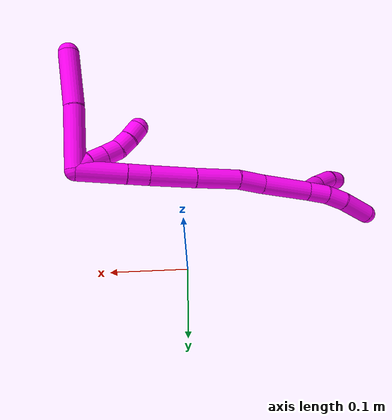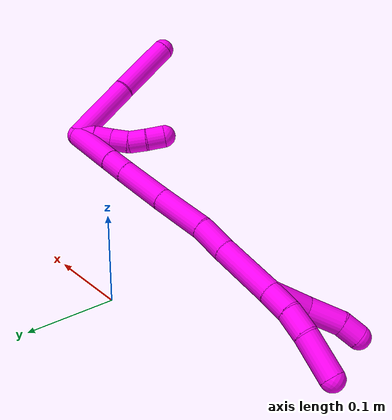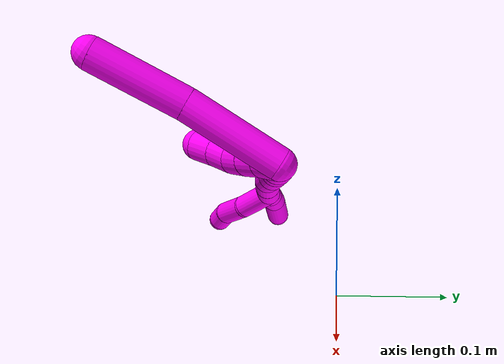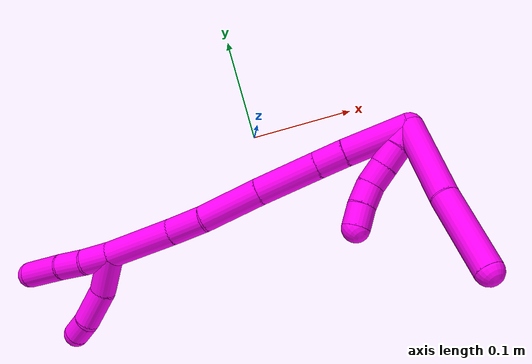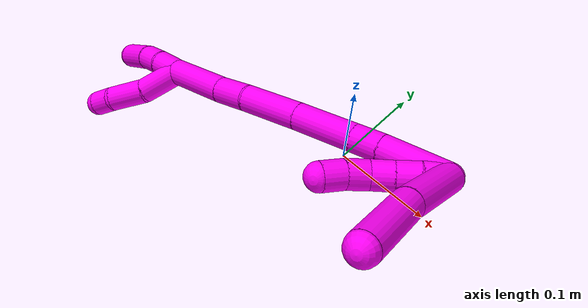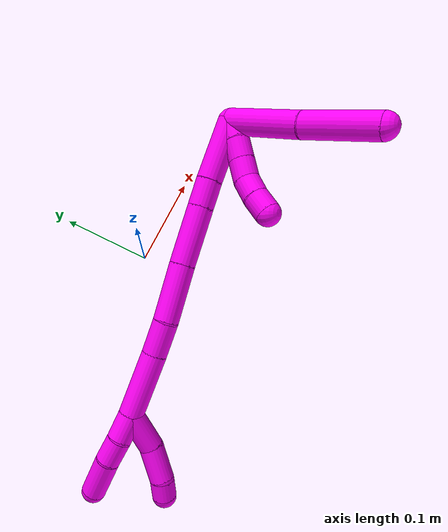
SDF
<sdf version="1.7">
 <world name="default">
  <model name="10">
   <static>0</static>
   <link name="10">
    <collision name="collision-cylinder-e_1_2_8">
     <pose>-0.005921 -0.000742 0.038357 0.019348 -0.153123 -0.001484</pose>
     <geometry><cylinder><radius>0.0125</radius><length>0.077637</length></cylinder></geometry>
     <surface>
      <friction><ode><mu>1.16</mu><mu2>1.16</mu2><slip1>0</slip1><slip2>0</slip2></ode></friction>
      <contact><ode><kp>1e+06</kp><kd>1</kd><max_vel>0</max_vel><min_depth>0.001</min_depth></ode></contact>
     </surface>
    </collision>
    <visual name="visual-cylinder-e_1_2_8">
     <pose>-0.005921 -0.000742 0.038357 0.019348 -0.153123 -0.001484</pose>
     <geometry><cylinder><radius>0.0125</radius><length>0.077637</length></cylinder></geometry>
     <material><ambient>1 0 0.964706 1</ambient></material>
    </visual>
    <collision name="collision-cylinder-e_2_8_6">
     <pose>-0.01533 -0.005603 0.112491 0.11461 -0.096561 -0.005544</pose>
     <geometry><cylinder><radius>0.0125</radius><length>0.072363</length></cylinder></geometry>
     <surface>
      <friction><ode><mu>1.16</mu><mu2>1.16</mu2><slip1>0</slip1><slip2>0</slip2></ode></friction>
      <contact><ode><kp>1e+06</kp><kd>1</kd><max_vel>0</max_vel><min_depth>0.001</min_depth></ode></contact>
     </surface>
    </collision>
    <visual name="visual-cylinder-e_2_8_6">
     <pose>-0.01533 -0.005603 0.112491 0.11461 -0.096561 -0.005544</pose>
     <geometry><cylinder><radius>0.0125</radius><length>0.072363</length></cylinder></geometry>
     <material><ambient>1 0 0.964706 1</ambient></material>
    </visual>
    <collision name="collision-cylinder-e_1_2_9">
     <pose>-0.009151 -0.00086 0.003939 0.214971 -1.15586 -0.140517</pose>
     <geometry><cylinder><radius>0.0125</radius><length>0.02</length></cylinder></geometry>
     <surface>
      <friction><ode><mu>1.16</mu><mu2>1.16</mu2><slip1>0</slip1><slip2>0</slip2></ode></friction>
      <contact><ode><kp>1e+06</kp><kd>1</kd><max_vel>0</max_vel><min_depth>0.001</min_depth></ode></contact>
     </surface>
    </collision>
    <visual name="visual-cylinder-e_1_2_9">
     <pose>-0.009151 -0.00086 0.003939 0.214971 -1.15586 -0.140517</pose>
     <geometry><cylinder><radius>0.0125</radius><length>0.02</length></cylinder></geometry>
     <material><ambient>1 0 0.964706 1</ambient></material>
    </visual>
    <collision name="collision-cylinder-e_2_9_10">
     <pose>-0.027709 -0.00296 0.011037 0.37406 -1.22445 -0.264236</pose>
     <geometry><cylinder><radius>0.0125</radius><length>0.02</length></cylinder></geometry>
     <surface>
      <friction><ode><mu>1.16</mu><mu2>1.16</mu2><slip1>0</slip1><slip2>0</slip2></ode></friction>
      <contact><ode><kp>1e+06</kp><kd>1</kd><max_vel>0</max_vel><min_depth>0.001</min_depth></ode></contact>
     </surface>
    </collision>
    <visual name="visual-cylinder-e_2_9_10">
     <pose>-0.027709 -0.00296 0.011037 0.37406 -1.22445 -0.264236</pose>
     <geometry><cylinder><radius>0.0125</radius><length>0.02</length></cylinder></geometry>
     <material><ambient>1 0 0.964706 1</ambient></material>
    </visual>
    <collision name="collision-cylinder-e_3_10_11">
     <pose>-0.046497 -0.005068 0.017548 0.25324 -1.21736 -0.176983</pose>
     <geometry><cylinder><radius>0.0125</radius><length>0.02</length></cylinder></geometry>
     <surface>
      <friction><ode><mu>1.16</mu><mu2>1.16</mu2><slip1>0</slip1><slip2>0</slip2></ode></friction>
      <contact><ode><kp>1e+06</kp><kd>1</kd><max_vel>0</max_vel><min_depth>0.001</min_depth></ode></contact>
     </surface>
    </collision>
    <visual name="visual-cylinder-e_3_10_11">
     <pose>-0.046497 -0.005068 0.017548 0.25324 -1.21736 -0.176983</pose>
     <geometry><cylinder><radius>0.0125</radius><length>0.02</length></cylinder></geometry>
     <material><ambient>1 0 0.964706 1</ambient></material>
    </visual>
    <collision name="collision-cylinder-e_4_11_12">
     <pose>-0.06396 -0.006175 0.026784 0.040746 -0.940933 -0.020724</pose>
     <geometry><cylinder><radius>0.0125</radius><length>0.02</length></cylinder></geometry>
     <surface>
      <friction><ode><mu>1.16</mu><mu2>1.16</mu2><slip1>0</slip1><slip2>0</slip2></ode></friction>
      <contact><ode><kp>1e+06</kp><kd>1</kd><max_vel>0</max_vel><min_depth>0.001</min_depth></ode></contact>
     </surface>
    </collision>
    <visual name="visual-cylinder-e_4_11_12">
     <pose>-0.06396 -0.006175 0.026784 0.040746 -0.940933 -0.020724</pose>
     <geometry><cylinder><radius>0.0125</radius><length>0.02</length></cylinder></geometry>
     <material><ambient>1 0 0.964706 1</ambient></material>
    </visual>
    <collision name="collision-cylinder-e_5_12_5">
     <pose>-0.07938 -0.007468 0.03938 0.155711 -0.82399 -0.068158</pose>
     <geometry><cylinder><radius>0.0125</radius><length>0.02</length></cylinder></geometry>
     <surface>
      <friction><ode><mu>1.16</mu><mu2>1.16</mu2><slip1>0</slip1><slip2>0</slip2></ode></friction>
      <contact><ode><kp>1e+06</kp><kd>1</kd><max_vel>0</max_vel><min_depth>0.001</min_depth></ode></contact>
     </surface>
    </collision>
    <visual name="visual-cylinder-e_5_12_5">
     <pose>-0.07938 -0.007468 0.03938 0.155711 -0.82399 -0.068158</pose>
     <geometry><cylinder><radius>0.0125</radius><length>0.02</length></cylinder></geometry>
     <material><ambient>1 0 0.964706 1</ambient></material>
    </visual>
    <collision name="collision-cylinder-e_1_2_13">
     <pose>-0.028418 0.003645 -0.006593 -2.63663 -1.31166 2.49457</pose>
     <geometry><cylinder><radius>0.0125</radius><length>0.058799</length></cylinder></geometry>
     <surface>
      <friction><ode><mu>1.16</mu><mu2>1.16</mu2><slip1>0</slip1><slip2>0</slip2></ode></friction>
      <contact><ode><kp>1e+06</kp><kd>1</kd><max_vel>0</max_vel><min_depth>0.001</min_depth></ode></contact>
     </surface>
    </collision>
    <visual name="visual-cylinder-e_1_2_13">
     <pose>-0.028418 0.003645 -0.006593 -2.63663 -1.31166 2.49457</pose>
     <geometry><cylinder><radius>0.0125</radius><length>0.058799</length></cylinder></geometry>
     <material><ambient>1 0 0.964706 1</ambient></material>
    </visual>
    <collision name="collision-cylinder-e_2_13_14">
     <pose>-0.069785 0.008376 -0.016006 -2.77372 -1.34153 2.681</pose>
     <geometry><cylinder><radius>0.0125</radius><length>0.026594</length></cylinder></geometry>
     <surface>
      <friction><ode><mu>1.16</mu><mu2>1.16</mu2><slip1>0</slip1><slip2>0</slip2></ode></friction>
      <contact><ode><kp>1e+06</kp><kd>1</kd><max_vel>0</max_vel><min_depth>0.001</min_depth></ode></contact>
     </surface>
    </collision>
    <visual name="visual-cylinder-e_2_13_14">
     <pose>-0.069785 0.008376 -0.016006 -2.77372 -1.34153 2.681</pose>
     <geometry><cylinder><radius>0.0125</radius><length>0.026594</length></cylinder></geometry>
     <material><ambient>1 0 0.964706 1</ambient></material>
    </visual>
    <collision name="collision-cylinder-e_3_14_15">
     <pose>-0.110724 0.011947 -0.024613 -2.73605 -1.3495 2.6385</pose>
     <geometry><cylinder><radius>0.0125</radius><length>0.057379</length></cylinder></geometry>
     <surface>
      <friction><ode><mu>1.16</mu><mu2>1.16</mu2><slip1>0</slip1><slip2>0</slip2></ode></friction>
      <contact><ode><kp>1e+06</kp><kd>1</kd><max_vel>0</max_vel><min_depth>0.001</min_depth></ode></contact>
     </surface>
    </collision>
    <visual name="visual-cylinder-e_3_14_15">
     <pose>-0.110724 0.011947 -0.024613 -2.73605 -1.3495 2.6385</pose>
     <geometry><cylinder><radius>0.0125</radius><length>0.057379</length></cylinder></geometry>
     <material><ambient>1 0 0.964706 1</ambient></material>
    </visual>
    <collision name="collision-cylinder-e_4_15_16">
     <pose>-0.166756 0.016506 -0.035507 -2.75585 -1.37668 2.67536</pose>
     <geometry><cylinder><radius>0.0125</radius><length>0.057156</length></cylinder></geometry>
     <surface>
      <friction><ode><mu>1.16</mu><mu2>1.16</mu2><slip1>0</slip1><slip2>0</slip2></ode></friction>
      <contact><ode><kp>1e+06</kp><kd>1</kd><max_vel>0</max_vel><min_depth>0.001</min_depth></ode></contact>
     </surface>
    </collision>
    <visual name="visual-cylinder-e_4_15_16">
     <pose>-0.166756 0.016506 -0.035507 -2.75585 -1.37668 2.67536</pose>
     <geometry><cylinder><radius>0.0125</radius><length>0.057156</length></cylinder></geometry>
     <material><ambient>1 0 0.964706 1</ambient></material>
    </visual>
    <collision name="collision-cylinder-e_5_16_17">
     <pose>-0.211123 0.018603 -0.045925 -3.13726 -1.25631 3.13563</pose>
     <geometry><cylinder><radius>0.0125</radius><length>0.034337</length></cylinder></geometry>
     <surface>
      <friction><ode><mu>1.16</mu><mu2>1.16</mu2><slip1>0</slip1><slip2>0</slip2></ode></friction>
      <contact><ode><kp>1e+06</kp><kd>1</kd><max_vel>0</max_vel><min_depth>0.001</min_depth></ode></contact>
     </surface>
    </collision>
    <visual name="visual-cylinder-e_5_16_17">
     <pose>-0.211123 0.018603 -0.045925 -3.13726 -1.25631 3.13563</pose>
     <geometry><cylinder><radius>0.0125</radius><length>0.034337</length></cylinder></geometry>
     <material><ambient>1 0 0.964706 1</ambient></material>
    </visual>
    <collision name="collision-cylinder-e_6_17_1">
     <pose>-0.258828 0.020961 -0.060732 -2.9005 -1.26867 2.81525</pose>
     <geometry><cylinder><radius>0.0125</radius><length>0.065734</length></cylinder></geometry>
     <surface>
      <friction><ode><mu>1.16</mu><mu2>1.16</mu2><slip1>0</slip1><slip2>0</slip2></ode></friction>
      <contact><ode><kp>1e+06</kp><kd>1</kd><max_vel>0</max_vel><min_depth>0.001</min_depth></ode></contact>
     </surface>
    </collision>
    <visual name="visual-cylinder-e_6_17_1">
     <pose>-0.258828 0.020961 -0.060732 -2.9005 -1.26867 2.81525</pose>
     <geometry><cylinder><radius>0.0125</radius><length>0.065734</length></cylinder></geometry>
     <material><ambient>1 0 0.964706 1</ambient></material>
    </visual>
    <collision name="collision-cylinder-e_1_1_18">
     <pose>-0.303205 0.025112 -0.074847 -2.76681 -1.20614 2.60423</pose>
     <geometry><cylinder><radius>0.0125</radius><length>0.027827</length></cylinder></geometry>
     <surface>
      <friction><ode><mu>1.16</mu><mu2>1.16</mu2><slip1>0</slip1><slip2>0</slip2></ode></friction>
      <contact><ode><kp>1e+06</kp><kd>1</kd><max_vel>0</max_vel><min_depth>0.001</min_depth></ode></contact>
     </surface>
    </collision>
    <visual name="visual-cylinder-e_1_1_18">
     <pose>-0.303205 0.025112 -0.074847 -2.76681 -1.20614 2.60423</pose>
     <geometry><cylinder><radius>0.0125</radius><length>0.027827</length></cylinder></geometry>
     <material><ambient>1 0 0.964706 1</ambient></material>
    </visual>
    <collision name="collision-cylinder-e_2_18_19">
     <pose>-0.328179 0.027258 -0.085758 -3.08939 -1.08635 3.05517</pose>
     <geometry><cylinder><radius>0.0125</radius><length>0.027065</length></cylinder></geometry>
     <surface>
      <friction><ode><mu>1.16</mu><mu2>1.16</mu2><slip1>0</slip1><slip2>0</slip2></ode></friction>
      <contact><ode><kp>1e+06</kp><kd>1</kd><max_vel>0</max_vel><min_depth>0.001</min_depth></ode></contact>
     </surface>
    </collision>
    <visual name="visual-cylinder-e_2_18_19">
     <pose>-0.328179 0.027258 -0.085758 -3.08939 -1.08635 3.05517</pose>
     <geometry><cylinder><radius>0.0125</radius><length>0.027065</length></cylinder></geometry>
     <material><ambient>1 0 0.964706 1</ambient></material>
    </visual>
    <collision name="collision-cylinder-e_3_19_4">
     <pose>-0.35928 0.024399 -0.103573 2.87166 -1.01215 -2.66103</pose>
     <geometry><cylinder><radius>0.0125</radius><length>0.045108</length></cylinder></geometry>
     <surface>
      <friction><ode><mu>1.16</mu><mu2>1.16</mu2><slip1>0</slip1><slip2>0</slip2></ode></friction>
      <contact><ode><kp>1e+06</kp><kd>1</kd><max_vel>0</max_vel><min_depth>0.001</min_depth></ode></contact>
     </surface>
    </collision>
    <visual name="visual-cylinder-e_3_19_4">
     <pose>-0.35928 0.024399 -0.103573 2.87166 -1.01215 -2.66103</pose>
     <geometry><cylinder><radius>0.0125</radius><length>0.045108</length></cylinder></geometry>
     <material><ambient>1 0 0.964706 1</ambient></material>
    </visual>
    <collision name="collision-cylinder-e_1_1_20">
     <pose>-0.306251 0.011141 -0.065738 1.21685 -0.891411 -0.642548</pose>
     <geometry><cylinder><radius>0.0125</radius><length>0.041248</length></cylinder></geometry>
     <surface>
      <friction><ode><mu>1.16</mu><mu2>1.16</mu2><slip1>0</slip1><slip2>0</slip2></ode></friction>
      <contact><ode><kp>1e+06</kp><kd>1</kd><max_vel>0</max_vel><min_depth>0.001</min_depth></ode></contact>
     </surface>
    </collision>
    <visual name="visual-cylinder-e_1_1_20">
     <pose>-0.306251 0.011141 -0.065738 1.21685 -0.891411 -0.642548</pose>
     <geometry><cylinder><radius>0.0125</radius><length>0.041248</length></cylinder></geometry>
     <material><ambient>1 0 0.964706 1</ambient></material>
    </visual>
    <collision name="collision-cylinder-e_2_20_21">
     <pose>-0.339341 -0.008014 -0.057932 1.12855 -1.1443 -0.774093</pose>
     <geometry><cylinder><radius>0.0125</radius><length>0.037443</length></cylinder></geometry>
     <surface>
      <friction><ode><mu>1.16</mu><mu2>1.16</mu2><slip1>0</slip1><slip2>0</slip2></ode></friction>
      <contact><ode><kp>1e+06</kp><kd>1</kd><max_vel>0</max_vel><min_depth>0.001</min_depth></ode></contact>
     </surface>
    </collision>
    <visual name="visual-cylinder-e_2_20_21">
     <pose>-0.339341 -0.008014 -0.057932 1.12855 -1.1443 -0.774093</pose>
     <geometry><cylinder><radius>0.0125</radius><length>0.037443</length></cylinder></geometry>
     <material><ambient>1 0 0.964706 1</ambient></material>
    </visual>
    <collision name="collision-cylinder-e_3_21_3">
     <pose>-0.366048 -0.019398 -0.055577 1.78622 -1.13593 -1.34071</pose>
     <geometry><cylinder><radius>0.0125</radius><length>0.021309</length></cylinder></geometry>
     <surface>
      <friction><ode><mu>1.16</mu><mu2>1.16</mu2><slip1>0</slip1><slip2>0</slip2></ode></friction>
      <contact><ode><kp>1e+06</kp><kd>1</kd><max_vel>0</max_vel><min_depth>0.001</min_depth></ode></contact>
     </surface>
    </collision>
    <visual name="visual-cylinder-e_3_21_3">
     <pose>-0.366048 -0.019398 -0.055577 1.78622 -1.13593 -1.34071</pose>
     <geometry><cylinder><radius>0.0125</radius><length>0.021309</length></cylinder></geometry>
     <material><ambient>1 0 0.964706 1</ambient></material>
    </visual>
    <collision name="collision-sphere-3">
     <pose>-0.375711 -0.023783 -0.056536 0 -0 0</pose>
     <geometry><sphere><radius>0.0125</radius></sphere></geometry>
     <surface>
      <friction><ode><mu>1.16</mu><mu2>1.16</mu2><slip1>0</slip1><slip2>0</slip2></ode></friction>
      <contact><ode><kp>1e+06</kp><kd>1</kd><max_vel>0</max_vel><min_depth>0.001</min_depth></ode></contact>
     </surface>
    </collision>
    <visual name="visual-sphere-3">
     <pose>-0.375711 -0.023783 -0.056536 0 -0 0</pose>
     <geometry><sphere><radius>0.0125</radius></sphere></geometry>
     <material><ambient>1 0 0.964706 1</ambient></material>
    </visual>
    <collision name="collision-sphere-21">
     <pose>-0.356385 -0.015014 -0.054617 0 -0 0</pose>
     <geometry><sphere><radius>0.0125</radius></sphere></geometry>
     <surface>
      <friction><ode><mu>1.16</mu><mu2>1.16</mu2><slip1>0</slip1><slip2>0</slip2></ode></friction>
      <contact><ode><kp>1e+06</kp><kd>1</kd><max_vel>0</max_vel><min_depth>0.001</min_depth></ode></contact>
     </surface>
    </collision>
    <visual name="visual-sphere-21">
     <pose>-0.356385 -0.015014 -0.054617 0 -0 0</pose>
     <geometry><sphere><radius>0.0125</radius></sphere></geometry>
     <material><ambient>1 0 0.964706 1</ambient></material>
    </visual>
    <collision name="collision-sphere-20">
     <pose>-0.322296 -0.001014 -0.061246 0 -0 0</pose>
     <geometry><sphere><radius>0.0125</radius></sphere></geometry>
     <surface>
      <friction><ode><mu>1.16</mu><mu2>1.16</mu2><slip1>0</slip1><slip2>0</slip2></ode></friction>
      <contact><ode><kp>1e+06</kp><kd>1</kd><max_vel>0</max_vel><min_depth>0.001</min_depth></ode></contact>
     </surface>
    </collision>
    <visual name="visual-sphere-20">
     <pose>-0.322296 -0.001014 -0.061246 0 -0 0</pose>
     <geometry><sphere><radius>0.0125</radius></sphere></geometry>
     <material><ambient>1 0 0.964706 1</ambient></material>
    </visual>
    <collision name="collision-sphere-4">
     <pose>-0.378405 0.021211 -0.115095 0 -0 0</pose>
     <geometry><sphere><radius>0.0125</radius></sphere></geometry>
     <surface>
      <friction><ode><mu>1.16</mu><mu2>1.16</mu2><slip1>0</slip1><slip2>0</slip2></ode></friction>
      <contact><ode><kp>1e+06</kp><kd>1</kd><max_vel>0</max_vel><min_depth>0.001</min_depth></ode></contact>
     </surface>
    </collision>
    <visual name="visual-sphere-4">
     <pose>-0.378405 0.021211 -0.115095 0 -0 0</pose>
     <geometry><sphere><radius>0.0125</radius></sphere></geometry>
     <material><ambient>1 0 0.964706 1</ambient></material>
    </visual>
    <collision name="collision-sphere-11">
     <pose>-0.055879 -0.005935 0.020899 0 -0 0</pose>
     <geometry><sphere><radius>0.0125</radius></sphere></geometry>
     <surface>
      <friction><ode><mu>1.16</mu><mu2>1.16</mu2><slip1>0</slip1><slip2>0</slip2></ode></friction>
      <contact><ode><kp>1e+06</kp><kd>1</kd><max_vel>0</max_vel><min_depth>0.001</min_depth></ode></contact>
     </surface>
    </collision>
    <visual name="visual-sphere-11">
     <pose>-0.055879 -0.005935 0.020899 0 -0 0</pose>
     <geometry><sphere><radius>0.0125</radius></sphere></geometry>
     <material><ambient>1 0 0.964706 1</ambient></material>
    </visual>
    <collision name="collision-sphere-10">
     <pose>-0.037115 -0.004201 0.014197 0 -0 0</pose>
     <geometry><sphere><radius>0.0125</radius></sphere></geometry>
     <surface>
      <friction><ode><mu>1.16</mu><mu2>1.16</mu2><slip1>0</slip1><slip2>0</slip2></ode></friction>
      <contact><ode><kp>1e+06</kp><kd>1</kd><max_vel>0</max_vel><min_depth>0.001</min_depth></ode></contact>
     </surface>
    </collision>
    <visual name="visual-sphere-10">
     <pose>-0.037115 -0.004201 0.014197 0 -0 0</pose>
     <geometry><sphere><radius>0.0125</radius></sphere></geometry>
     <material><ambient>1 0 0.964706 1</ambient></material>
    </visual>
    <collision name="collision-sphere-6">
     <pose>-0.018818 -0.009721 0.148268 0 -0 0</pose>
     <geometry><sphere><radius>0.0125</radius></sphere></geometry>
     <surface>
      <friction><ode><mu>1.16</mu><mu2>1.16</mu2><slip1>0</slip1><slip2>0</slip2></ode></friction>
      <contact><ode><kp>1e+06</kp><kd>1</kd><max_vel>0</max_vel><min_depth>0.001</min_depth></ode></contact>
     </surface>
    </collision>
    <visual name="visual-sphere-6">
     <pose>-0.018818 -0.009721 0.148268 0 -0 0</pose>
     <geometry><sphere><radius>0.0125</radius></sphere></geometry>
     <material><ambient>1 0 0.964706 1</ambient></material>
    </visual>
    <collision name="collision-sphere-9">
     <pose>-0.018303 -0.00172 0.007877 0 -0 0</pose>
     <geometry><sphere><radius>0.0125</radius></sphere></geometry>
     <surface>
      <friction><ode><mu>1.16</mu><mu2>1.16</mu2><slip1>0</slip1><slip2>0</slip2></ode></friction>
      <contact><ode><kp>1e+06</kp><kd>1</kd><max_vel>0</max_vel><min_depth>0.001</min_depth></ode></contact>
     </surface>
    </collision>
    <visual name="visual-sphere-9">
     <pose>-0.018303 -0.00172 0.007877 0 -0 0</pose>
     <geometry><sphere><radius>0.0125</radius></sphere></geometry>
     <material><ambient>1 0 0.964706 1</ambient></material>
    </visual>
    <collision name="collision-sphere-2">
     <geometry><sphere><radius>0.0125</radius></sphere></geometry>
     <surface>
      <friction><ode><mu>1.16</mu><mu2>1.16</mu2><slip1>0</slip1><slip2>0</slip2></ode></friction>
      <contact><ode><kp>1e+06</kp><kd>1</kd><max_vel>0</max_vel><min_depth>0.001</min_depth></ode></contact>
     </surface>
    </collision>
    <visual name="visual-sphere-2">
     <geometry><sphere><radius>0.0125</radius></sphere></geometry>
     <material><ambient>1 0 0.964706 1</ambient></material>
    </visual>
    <collision name="collision-sphere-19">
     <pose>-0.340155 0.027586 -0.092052 0 -0 0</pose>
     <geometry><sphere><radius>0.0125</radius></sphere></geometry>
     <surface>
      <friction><ode><mu>1.16</mu><mu2>1.16</mu2><slip1>0</slip1><slip2>0</slip2></ode></friction>
      <contact><ode><kp>1e+06</kp><kd>1</kd><max_vel>0</max_vel><min_depth>0.001</min_depth></ode></contact>
     </surface>
    </collision>
    <visual name="visual-sphere-19">
     <pose>-0.340155 0.027586 -0.092052 0 -0 0</pose>
     <geometry><sphere><radius>0.0125</radius></sphere></geometry>
     <material><ambient>1 0 0.964706 1</ambient></material>
    </visual>
    <collision name="collision-sphere-8">
     <pose>-0.011842 -0.001484 0.076715 0 -0 0</pose>
     <geometry><sphere><radius>0.0125</radius></sphere></geometry>
     <surface>
      <friction><ode><mu>1.16</mu><mu2>1.16</mu2><slip1>0</slip1><slip2>0</slip2></ode></friction>
      <contact><ode><kp>1e+06</kp><kd>1</kd><max_vel>0</max_vel><min_depth>0.001</min_depth></ode></contact>
     </surface>
    </collision>
    <visual name="visual-sphere-8">
     <pose>-0.011842 -0.001484 0.076715 0 -0 0</pose>
     <geometry><sphere><radius>0.0125</radius></sphere></geometry>
     <material><ambient>1 0 0.964706 1</ambient></material>
    </visual>
    <collision name="collision-sphere-12">
     <pose>-0.072041 -0.006415 0.03267 0 -0 0</pose>
     <geometry><sphere><radius>0.0125</radius></sphere></geometry>
     <surface>
      <friction><ode><mu>1.16</mu><mu2>1.16</mu2><slip1>0</slip1><slip2>0</slip2></ode></friction>
      <contact><ode><kp>1e+06</kp><kd>1</kd><max_vel>0</max_vel><min_depth>0.001</min_depth></ode></contact>
     </surface>
    </collision>
    <visual name="visual-sphere-12">
     <pose>-0.072041 -0.006415 0.03267 0 -0 0</pose>
     <geometry><sphere><radius>0.0125</radius></sphere></geometry>
     <material><ambient>1 0 0.964706 1</ambient></material>
    </visual>
    <collision name="collision-sphere-5">
     <pose>-0.086718 -0.008522 0.046091 0 -0 0</pose>
     <geometry><sphere><radius>0.0125</radius></sphere></geometry>
     <surface>
      <friction><ode><mu>1.16</mu><mu2>1.16</mu2><slip1>0</slip1><slip2>0</slip2></ode></friction>
      <contact><ode><kp>1e+06</kp><kd>1</kd><max_vel>0</max_vel><min_depth>0.001</min_depth></ode></contact>
     </surface>
    </collision>
    <visual name="visual-sphere-5">
     <pose>-0.086718 -0.008522 0.046091 0 -0 0</pose>
     <geometry><sphere><radius>0.0125</radius></sphere></geometry>
     <material><ambient>1 0 0.964706 1</ambient></material>
    </visual>
    <collision name="collision-sphere-13">
     <pose>-0.056836 0.007289 -0.013187 0 -0 0</pose>
     <geometry><sphere><radius>0.0125</radius></sphere></geometry>
     <surface>
      <friction><ode><mu>1.16</mu><mu2>1.16</mu2><slip1>0</slip1><slip2>0</slip2></ode></friction>
      <contact><ode><kp>1e+06</kp><kd>1</kd><max_vel>0</max_vel><min_depth>0.001</min_depth></ode></contact>
     </surface>
    </collision>
    <visual name="visual-sphere-13">
     <pose>-0.056836 0.007289 -0.013187 0 -0 0</pose>
     <geometry><sphere><radius>0.0125</radius></sphere></geometry>
     <material><ambient>1 0 0.964706 1</ambient></material>
    </visual>
    <collision name="collision-sphere-14">
     <pose>-0.082734 0.009463 -0.018826 0 -0 0</pose>
     <geometry><sphere><radius>0.0125</radius></sphere></geometry>
     <surface>
      <friction><ode><mu>1.16</mu><mu2>1.16</mu2><slip1>0</slip1><slip2>0</slip2></ode></friction>
      <contact><ode><kp>1e+06</kp><kd>1</kd><max_vel>0</max_vel><min_depth>0.001</min_depth></ode></contact>
     </surface>
    </collision>
    <visual name="visual-sphere-14">
     <pose>-0.082734 0.009463 -0.018826 0 -0 0</pose>
     <geometry><sphere><radius>0.0125</radius></sphere></geometry>
     <material><ambient>1 0 0.964706 1</ambient></material>
    </visual>
    <collision name="collision-sphere-15">
     <pose>-0.138714 0.014431 -0.030399 0 -0 0</pose>
     <geometry><sphere><radius>0.0125</radius></sphere></geometry>
     <surface>
      <friction><ode><mu>1.16</mu><mu2>1.16</mu2><slip1>0</slip1><slip2>0</slip2></ode></friction>
      <contact><ode><kp>1e+06</kp><kd>1</kd><max_vel>0</max_vel><min_depth>0.001</min_depth></ode></contact>
     </surface>
    </collision>
    <visual name="visual-sphere-15">
     <pose>-0.138714 0.014431 -0.030399 0 -0 0</pose>
     <geometry><sphere><radius>0.0125</radius></sphere></geometry>
     <material><ambient>1 0 0.964706 1</ambient></material>
    </visual>
    <collision name="collision-sphere-16">
     <pose>-0.194797 0.01858 -0.040615 0 -0 0</pose>
     <geometry><sphere><radius>0.0125</radius></sphere></geometry>
     <surface>
      <friction><ode><mu>1.16</mu><mu2>1.16</mu2><slip1>0</slip1><slip2>0</slip2></ode></friction>
      <contact><ode><kp>1e+06</kp><kd>1</kd><max_vel>0</max_vel><min_depth>0.001</min_depth></ode></contact>
     </surface>
    </collision>
    <visual name="visual-sphere-16">
     <pose>-0.194797 0.01858 -0.040615 0 -0 0</pose>
     <geometry><sphere><radius>0.0125</radius></sphere></geometry>
     <material><ambient>1 0 0.964706 1</ambient></material>
    </visual>
    <collision name="collision-sphere-17">
     <pose>-0.22745 0.018626 -0.051236 0 -0 0</pose>
     <geometry><sphere><radius>0.0125</radius></sphere></geometry>
     <surface>
      <friction><ode><mu>1.16</mu><mu2>1.16</mu2><slip1>0</slip1><slip2>0</slip2></ode></friction>
      <contact><ode><kp>1e+06</kp><kd>1</kd><max_vel>0</max_vel><min_depth>0.001</min_depth></ode></contact>
     </surface>
    </collision>
    <visual name="visual-sphere-17">
     <pose>-0.22745 0.018626 -0.051236 0 -0 0</pose>
     <geometry><sphere><radius>0.0125</radius></sphere></geometry>
     <material><ambient>1 0 0.964706 1</ambient></material>
    </visual>
    <collision name="collision-sphere-1">
     <pose>-0.290207 0.023296 -0.070229 0 -0 0</pose>
     <geometry><sphere><radius>0.0125</radius></sphere></geometry>
     <surface>
      <friction><ode><mu>1.16</mu><mu2>1.16</mu2><slip1>0</slip1><slip2>0</slip2></ode></friction>
      <contact><ode><kp>1e+06</kp><kd>1</kd><max_vel>0</max_vel><min_depth>0.001</min_depth></ode></contact>
     </surface>
    </collision>
    <visual name="visual-sphere-1">
     <pose>-0.290207 0.023296 -0.070229 0 -0 0</pose>
     <geometry><sphere><radius>0.0125</radius></sphere></geometry>
     <material><ambient>1 0 0.964706 1</ambient></material>
    </visual>
    <collision name="collision-sphere-18">
     <pose>-0.316204 0.026929 -0.079464 0 -0 0</pose>
     <geometry><sphere><radius>0.0125</radius></sphere></geometry>
     <surface>
      <friction><ode><mu>1.16</mu><mu2>1.16</mu2><slip1>0</slip1><slip2>0</slip2></ode></friction>
      <contact><ode><kp>1e+06</kp><kd>1</kd><max_vel>0</max_vel><min_depth>0.001</min_depth></ode></contact>
     </surface>
    </collision>
    <visual name="visual-sphere-18">
     <pose>-0.316204 0.026929 -0.079464 0 -0 0</pose>
     <geometry><sphere><radius>0.0125</radius></sphere></geometry>
     <material><ambient>1 0 0.964706 1</ambient></material>
    </visual>
    <inertial>
     <pose>-0.155255 0.007269 -0.015831 0 -0 0</pose>
     <mass>0.75</mass>
     <inertia>
      <ixx>1.6e-05</ixx>
      <ixy>0</ixy>
      <ixz>0</ixz>
      <iyy>0.000196</iyy>
      <iyz>0</iyz>
      <izz>0.000141</izz>
     </inertia>
    </inertial>
   </link>
   <pose>0.122032 -0.041479 0.14366 0.91265 -0.21349 0.365712</pose>
  </model>
 </world>
</sdf>
